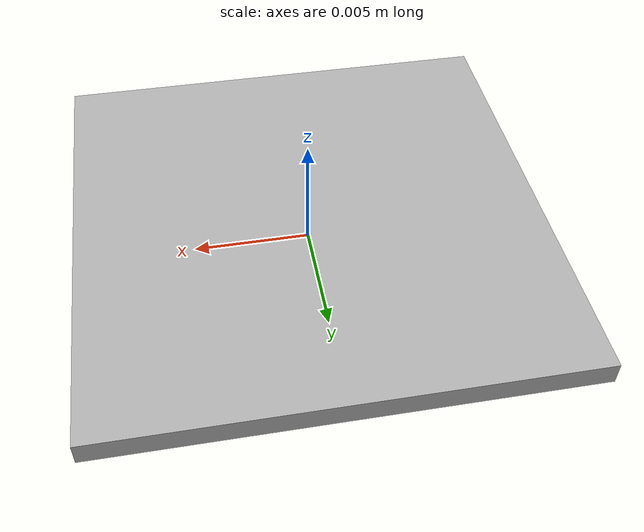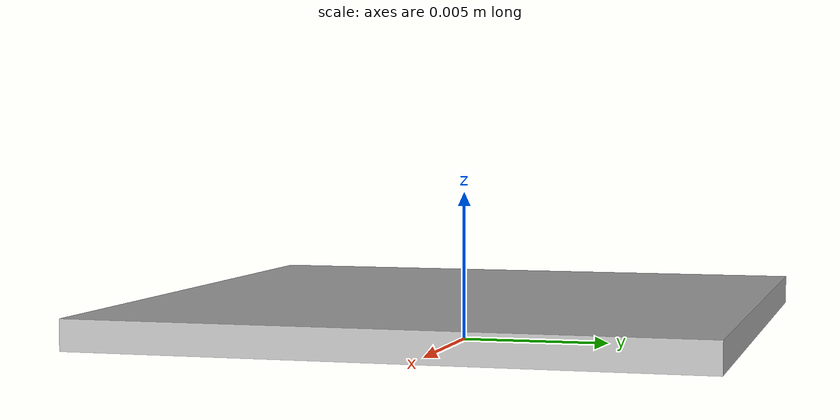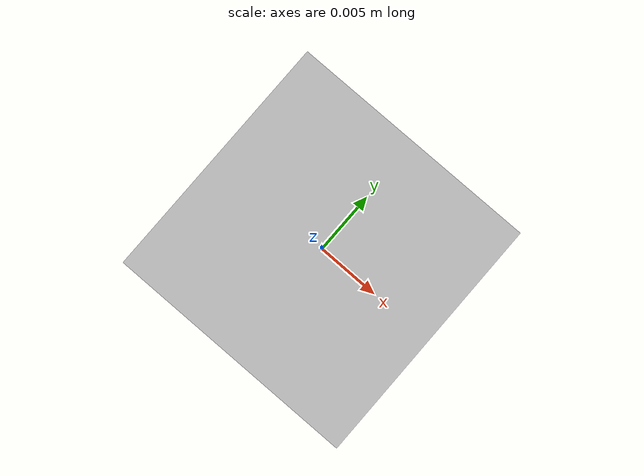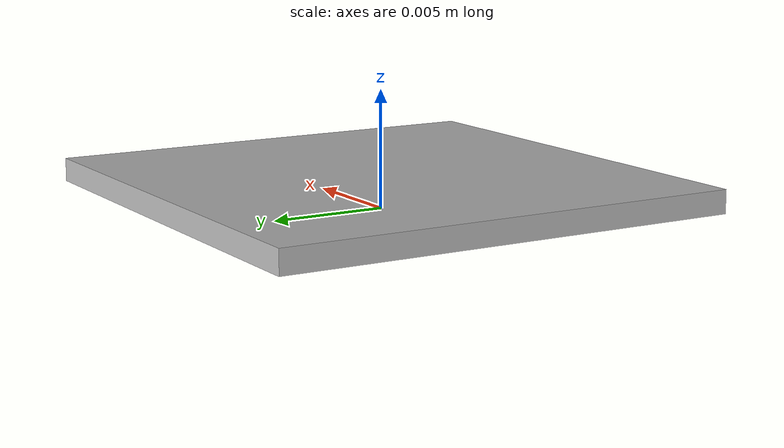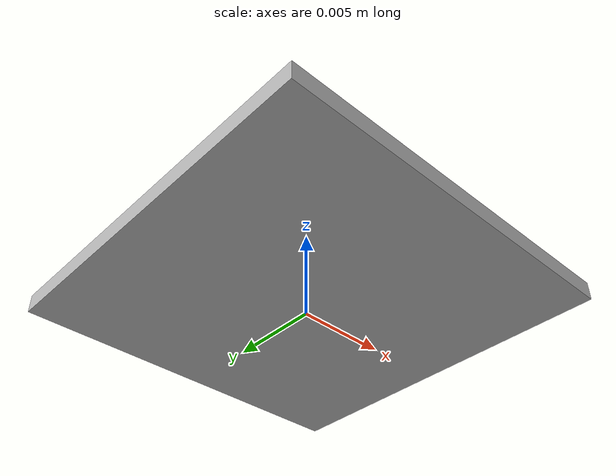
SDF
<?xml version="1.0"?>
<sdf version="1.5">
    <model name="qr_cnc2">
        <static>true</static>
        <link name="qr_cnc2_link">
            <pose>0 0 1e-3 0 0 1.5707963267948966</pose>
            <visual name="visual_qr_cnc2">
                <cast_shadows>false</cast_shadows>
                <geometry><box><size>0.02 0.02 1e-3</size></box></geometry>
                <material>
                    <script>
                        <uri>model://qr_cnc2/materials/scripts</uri>
                        <uri>model://qr_cnc2/materials/textures</uri>
                        <name>qr_cnc2/qr_cnc2</name>
                    </script>
                </material>
            </visual>
        </link>
    </model>
</sdf>
